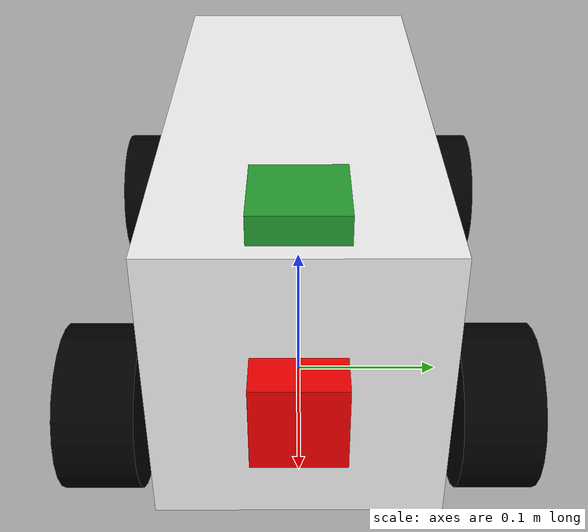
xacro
<?xml version="1.0"?>
<robot name="square_robot" xmlns:xacro="http://www.ros.org/wiki/xacro">
<!-- 小车自定义参数部分 -->
	<!-- xacro自定义变量参数 -->
    <!-- 轮子 宽0.044m 半径0.047m -->
    <xacro:property name="length_wheel" value="0.044" />
    <xacro:property name="radius_wheel" value="0.047" />
	<!-- 左右轮子与车身中心点(0,0,0)的vx轴距离 0.124m y轴距离 0.11m z轴距离 0.048m-->
	<xacro:property name="FL" value="0.124 0.11 -0.048"/>
    <xacro:property name="FR" value="0.124 -0.11 -0.048"/>
    <xacro:property name="BL" value="-0.124 0.11 -0.048"/>
    <xacro:property name="BR" value="-0.124 -0.11 -0.048"/>
	<!-- 长方体车身  (x方向)长=0.342m (y方向)宽0.16m (z方向)高=0.172-0.08m-->
	<xacro:property name="bodywork" value="0.342 0.16 0.168"/>
    <xacro:property name="PI"           value="3.1415926"/>
    <!-- 定义一个名为 default_inertial 的XACRO宏 接受“mass”这个参数 -->
    <xacro:macro name="default_inertial" params="mass">
        <!-- 物体惯性描述 -->
        <inertial>
            <mass value="${mass}" />
            <inertia ixx="0.1" ixy="0.0"
                     ixz="0.0"
                     iyy="0.1" iyz="0.0"
                     izz="0.1" />
        </inertial>
    </xacro:macro>
<!-- 小车自定义参数部分 -->

<!-- 小车整体描述 -->
	<!-- 小车整体坐标部分 -->
    <link name="6_car">
    </link>
	<!-- 小车整体坐标部分 -->
	<!-- 底盘部分 -->
    <link name="base_footprint">
   		<visual>
			<geometry>
      				<box size="0.001 0.001 0.001"/>
     			</geometry>
   		</visual>
		<xacro:default_inertial mass="0.0001"/>
 	</link>
	<!-- 底盘部分 -->
	<!-- 车身部分 -->
	<link name="base_link">
   		<visual>
			<geometry>
      				<box size="${bodywork}"/>
     		</geometry>
			<material name="white">
				<color rgba="1 1 1 1"/>
			</material>
   		</visual>
		<collision>
			<geometry>
       				<box size="${bodywork}"/>
			</geometry>
		</collision>
        <xacro:default_inertial mass="8.2"/>
 	</link>
	<!-- 车身部分 -->
	<!-- 轮子部分 -->
	<xacro:macro name="wheel_" params="num">
 	<link name="wheel_${num}">
   		<visual>
     			<geometry>
					<!-- 轮子宽${length_wheel}，半径${radius_wheel} -->
       				<cylinder length="${length_wheel}" radius="${radius_wheel}"/>
     			</geometry>
   				<material name="black">
					<color rgba="0 0 0 1"/>
				</material>
		</visual>
		<collision>
			<geometry>
       				<cylinder length="${length_wheel}" radius="${radius_wheel}"/>
			</geometry>
		</collision>
		<xacro:default_inertial mass="0.5"/>
 	</link>
	</xacro:macro>
	<xacro:wheel_ num="1" />
	<xacro:wheel_ num="2" />
	<xacro:wheel_ num="3" />
	<xacro:wheel_ num="4" />
	<!-- 轮子部分 -->

    <!-- 底盘关节部分 -->
    <joint name="6_car_joint" type="fixed">
        <parent link = "6_car"/>
        <child  link = "base_footprint"/>
    </joint>
    <!-- 底盘关节部分 -->
    <!-- 车身关节部分 -->
	<joint name="base_footprint_joint" type="fixed">
		<parent link = "base_footprint" />
		<child  link = "base_link" />
		<origin xyz  = "0 0 0.126" />
	</joint>
    <!-- 车身关节部分 -->
	<!-- 轮子关节连接部分 -->
	<xacro:macro name="wheel_joints" params="pose num position">
		<joint name="wheel_${pose}" type="continuous">
			<parent link = "base_link"/>
			<child  link = "wheel_${num}"/>
			<origin rpy  = "${-PI/2} 0 0" xyz="${position}"/>
			<axis   xyz  = "0 0 1" />
            <limit  effort = "1" velocity="33.504" />
		</joint>
	</xacro:macro>
	<xacro:wheel_joints pose="FL" num="1" position="${FL}" />
	<xacro:wheel_joints pose="BL" num="2" position="${BL}" />
	<xacro:wheel_joints pose="FR" num="3" position="${FR}" />
	<xacro:wheel_joints pose="BR" num="4" position="${BR}" />
	<!-- 轮子关节连接部分 -->
<!-- 小车整体描述 -->

<!-- GAZEBO相关插件 -->
    <!-- 摄像头部分 -->
    <xacro:include filename="$(find urdf_test)/urdf/gazebo_plugin_xacro/camera.xacro" />
    <xacro:camera parent_link="base_link" coordinate="0.171 0 0" pose="0 0 0" width="640" height="480" fps="30" fov="2.178718" near="0.045" far="100"/>
    <!-- 摄像头部分 -->
    <!-- 2D激光雷达的部分 -->
    <xacro:include filename="$(find urdf_test)/urdf/gazebo_plugin_xacro/2D_lidar.xacro" />
    <xacro:G4_lidar parent_link="base_footprint" coordinate="0.146 0 0.225" pose="0 0 0" round_rate="12" resolution="0.28" range_min="0.1" range_max="16.0" />
    <!-- 2D激光雷达的部分 -->
    <!-- IMU部分 -->
    <xacro:include filename="$(find urdf_test)/urdf/gazebo_plugin_xacro/IMU.xacro" />
    <xacro:IMU parent_link="base_link" coordinate="-0.171 0 0" pose="0 0 0" xyz_noise="0.01 0.01 0.01" rpy_noise="0.01 0.01 0.01" />
    <!-- IMU部分 -->
    <!-- 小车控制器部分 -->
    <xacro:include filename="$(find urdf_test)/urdf/gazebo_plugin_xacro/car_mecanum.xacro" />
    <xacro:mecanum BaseFrame="6_car" lf="wheel_FL" bf="wheel_FR" lr="wheel_BL" br="wheel_BR" />
    <!-- 小车控制器部分 -->
	<!-- 深度相机部分 -->
	<!-- 深度相机部分 -->
<!-- GAZEBO相关插件 -->
</robot>

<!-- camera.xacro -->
<robot name="xxx_robot" xmlns:xacro="http://www.ros.org/wiki/xacro">
    <xacro:macro name="camera" params="parent_link coordinate pose width height fps fov near far">
    <!-- 摄像头部分 -->
    <link name="camera_link">
        <collision>
            <geometry>
                <box size="0.05 0.05 0.05"/>
            </geometry>
        </collision>

        <visual>
            <geometry>
                <box size="0.05 0.05 0.05"/>
            </geometry>
            <material name="red">
                <color rgba="1 0 0 1"/>
            </material>
        </visual>

        <inertial>
            <mass value="1e-2" />
            <inertia ixx="1e-6" ixy="0" ixz="0" iyy="1e-6" iyz="0" izz="1e-6" />
        </inertial>
    </link>
    <!-- 摄像头部分 -->

    <!-- 摄像头关节部分 -->
    <joint name="camera_joint" type="fixed">
        <origin xyz  = "${coordinate}" rpy="${pose}"/>
        <parent link = "${parent_link}"/>
        <child  link = "camera_link"/>
    </joint>
    <!-- 摄像头关节部分 -->

    <!-- 摄像头gazebo插件部分 -->
    <gazebo reference="camera_link">
        <material>Gazebo/Red</material>
        <sensor type="camera" name="camera1">
            <update_rate>${fps}</update_rate>
            <camera name="head">
                <!-- 相机水平视场角(单位弧度) -->
                <horizontal_fov>${fov}</horizontal_fov>

                <image>
                    <!-- 图像宽(单位px) -->
                    <width>${width}</width>
                    <height>${height}</height>
                    <format>R8G8B8</format>
                </image>

                <clip>
                    <!-- 物体最近距离(单位m) -->
                    <near>${near}</near>
                    <!-- 物体最远距离(单位m) -->
                    <far>${far}</far>
                </clip>

                <noise>
                    <type>gaussian</type>
                    <mean>0.0</mean>
                    <stddev>0.007</stddev>
                </noise>
            </camera>

            <plugin name="camera_controller" filename="libgazebo_ros_camera.so">
                <alwaysOn>true</alwaysOn>
                <updateRate>${fps}</updateRate>
                <cameraName>/</cameraName>
                <imageTopicName>cam</imageTopicName>
                <cameraInfoTopicName>camera_info</cameraInfoTopicName>
                <frameName>camera_link</frameName>
                <hackBaseline>0.07</hackBaseline>
                <distortionK1>0.0</distortionK1>
                <distortionK2>0.0</distortionK2>
                <distortionK3>0.0</distortionK3>
                <distortionT1>0.0</distortionT1>
                <distortionT2>0.0</distortionT2>
            </plugin>
        </sensor>
    </gazebo>
    <!-- 摄像头gazebo插件部分 -->

    </xacro:macro>
</robot>

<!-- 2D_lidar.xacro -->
<robot name="xxx_robot" xmlns:xacro="http://www.ros.org/wiki/xacro">
    <!-- 定义一个名为G4_lidar的MACRO的宏,接受parent_link coordinate pose参数 -->
    <xacro:macro name="G4_lidar" params="parent_link coordinate pose round_rate resolution range_min range_max">
    <!-- 2D激光雷达关节部分 -->
        <joint name="hokuyo_joint" type="fixed">
            <origin xyz  = "${coordinate}" rpy="${pose}"/>
            <parent link = "${parent_link}"/>
            <child  link = "laser_frame"/>
        </joint>
    <!-- 2D激光雷达关节部分 -->

    <!-- 2D激光雷达部分 -->
        <link name="laser_frame">
            <collision>
                <origin xyz="0 0 0" rpy="0 0 0"/>
                <geometry>
                    <box size="0.05 0.05 0.016"/>
                </geometry>
            </collision>

            <visual>
                <origin xyz="0 0 0" rpy="0 0 0"/>
                <geometry>
                    <box size="0.05 0.05 0.016"/>
                </geometry>
            </visual>

            <inertial>
                <mass value="1e-2" />
                <origin xyz="0 0 0" rpy="0 0 0"/>
                <inertia ixx="1e-6" ixy="0" ixz="0" iyy="1e-6" iyz="0" izz="1e-6" />
            </inertial>
        </link>
    <!-- 2D激光雷达部分 -->

    <!-- 2D激光雷达gazebo插件部分 -->
        <gazebo reference="laser_frame">
            <material>Gazebo/Green</material>
            <sensor type="gpu_ray" name="head_hokuyo_sensor">
            <!-- 如果电脑没有gpu请用下面的代替,gpu_ray要比ray稳定且好用 -->
                <pose>0 0 0 0 0 0</pose>
                <!-- 雷达射线可视化 -->
                <visualize>true</visualize>
                <!-- 雷达转360度的频率(单位是hz) -->
                <update_rate>${round_rate}</update_rate>

                <ray>

                    <scan>
                        <horizontal>
                            <!-- 雷达转360度所发射的射线 -->
                            <samples>1280</samples>
                            <!-- 角度分辨率(单位是度) -->
                            <resolution>0.28</resolution>
                            <!-- 雷达测量范围(单位弧度) -->
                            <!-- 正前方向右的范围(单位弧度) -->
                            <min_angle>-3.141592653</min_angle>
                            <!-- 正前方向左的范围(单位弧度) -->
                            <max_angle>3.141592653</max_angle>
                        </horizontal>
                    </scan>

                    <range>
                        <!-- 测量距离范围(单位m) -->
                        <min>${range_min}</min>
                        <max>${range_max}</max>
                        <!-- 精度(单位是度) -->
                        <resolution>${resolution}</resolution>
                    </range>

                    <noise>
                        <!-- 高斯噪声 -->
                        <type>gaussian</type>
                        <mean>0.0</mean>
                        <stddev>0.01</stddev>
                    </noise>

                </ray>

                <plugin name="gazebo_ros_head_hokuyo_controller" filename="libgazebo_ros_gpu_laser.so">
                <!-- 如果电脑没有gpu请用下面的代替 -->
                    <!-- 发布数据的话题名 -->
                    <topicName>/scan</topicName>
                    <!-- 在tf树所属的坐标框架 -->
                    <frameName>laser_frame</frameName>
                </plugin>

            </sensor>
        </gazebo>
    <!-- 2D激光雷达gazebo插件部分 -->

    </xacro:macro>
</robot>

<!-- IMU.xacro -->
<robot name="xxx_robot" xmlns:xacro="http://www.ros.org/wiki/xacro">
    <xacro:macro name="IMU" params="parent_link coordinate pose rpy_noise xyz_noise">
        <!-- IMU部分 -->
        <link name="imu_link">
            <collision>
                <origin xyz="0 0 0" rpy="0 0 0"/>
                <geometry>
                    <box size="0.05 0.05 0.05"/>
                </geometry>
            </collision>

            <visual>
                <origin xyz="0 0 0" rpy="0 0 0"/>
                    <geometry>
                        <box size="0.05 0.05 0.05"/>
                    </geometry>
                <material name="green">
                    <color rgba="0 1 0 1"/>
                </material>
            </visual>

            <inertial>
                <mass value="1e-2" />
                    <origin xyz="0 0 0" rpy="0 0 0"/>
                    <inertia ixx="1e-6" ixy="0" ixz="0" iyy="1e-6" iyz="0" izz="1e-6" />
            </inertial>
        </link>
        <!-- IMU部分 -->

        <!-- IMU关节部分 -->
        <joint name="imu_joint" type="fixed">
            <origin xyz  = "${coordinate}" rpy="${pose}"/>
            <parent link = "${parent_link}"/>
            <child  link = "imu_link"/>
        </joint>
        <!-- IMU关节部分 -->

        <!-- IMUgazebo插件部分 -->
        <gazebo reference="imu_link">
            <material>Gazebo/Orange</material>
            <gravity>true</gravity>

            <sensor name="imu_sensor" type="imu">
                <always_on>true</always_on>
                <update_rate>100</update_rate>
                <visualize>true</visualize>
                <topic>__default_topic__</topic>

                <plugin filename="libgazebo_ros_imu_sensor.so" name="imu_plugin">
                    <topicName>imu</topicName>
                    <bodyName>imu_link</bodyName>
                    <!-- 数据更新频率 -->
                    <updateRateHZ>100.0</updateRateHZ>
                    <gaussianNoise>0.0</gaussianNoise>
                    <gaussianNoiseXYZ>${xyz_noise}</gaussianNoiseXYZ>
                    <gaussianNoiseRPY>${rpy_noise}</gaussianNoiseRPY>
                    <xyzOffset>0 0 0</xyzOffset>
                    <rpyOffset>0 0 0</rpyOffset>
                    <frameName>imu_link</frameName>
                </plugin>
                <pose>0 0 0 0 0 0</pose>
            </sensor>
        </gazebo>
        <!-- IMUgazebo插件部分 -->
    </xacro:macro>
</robot>
